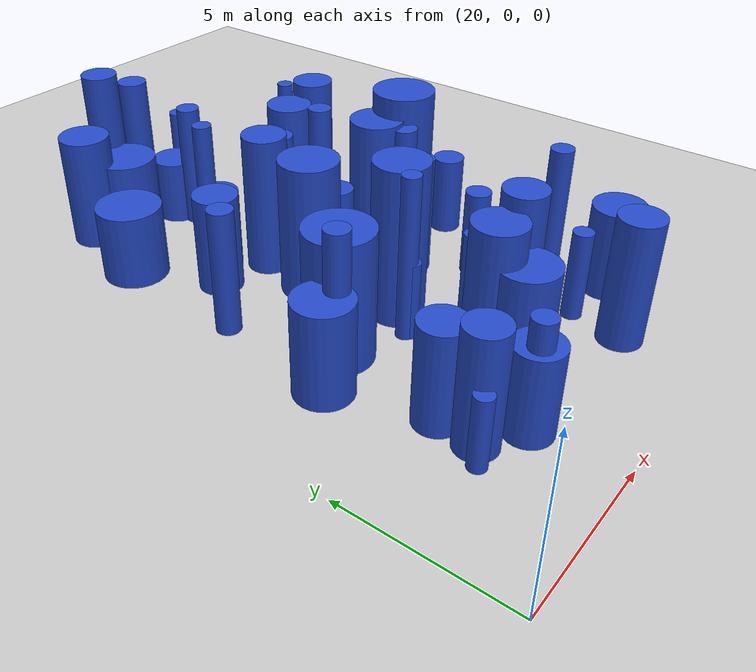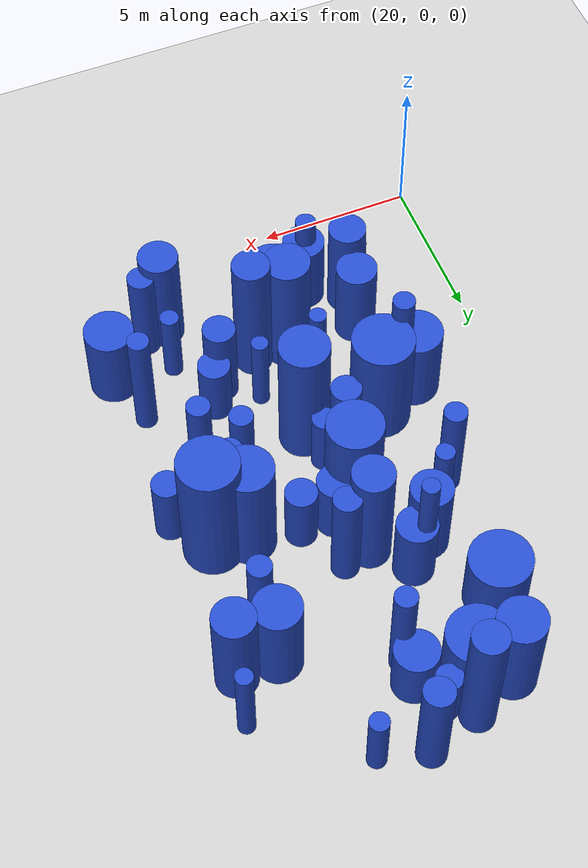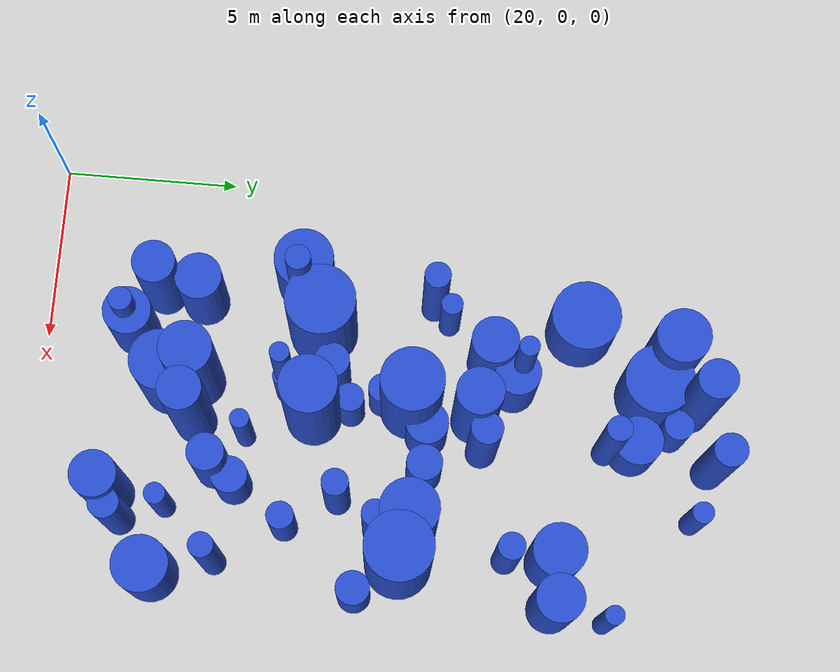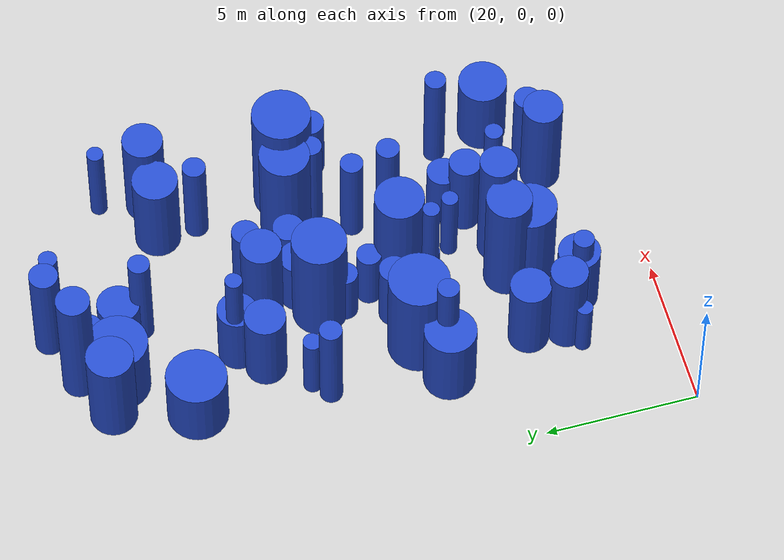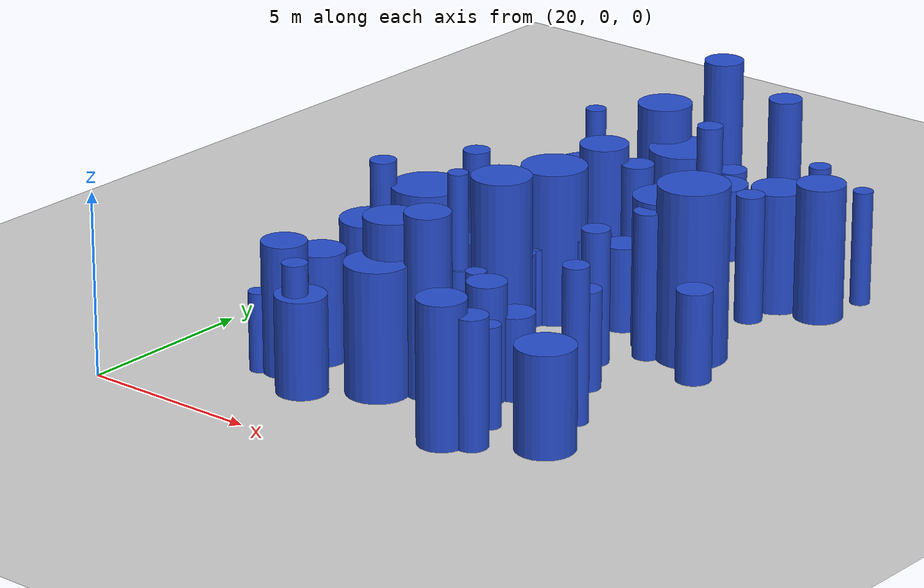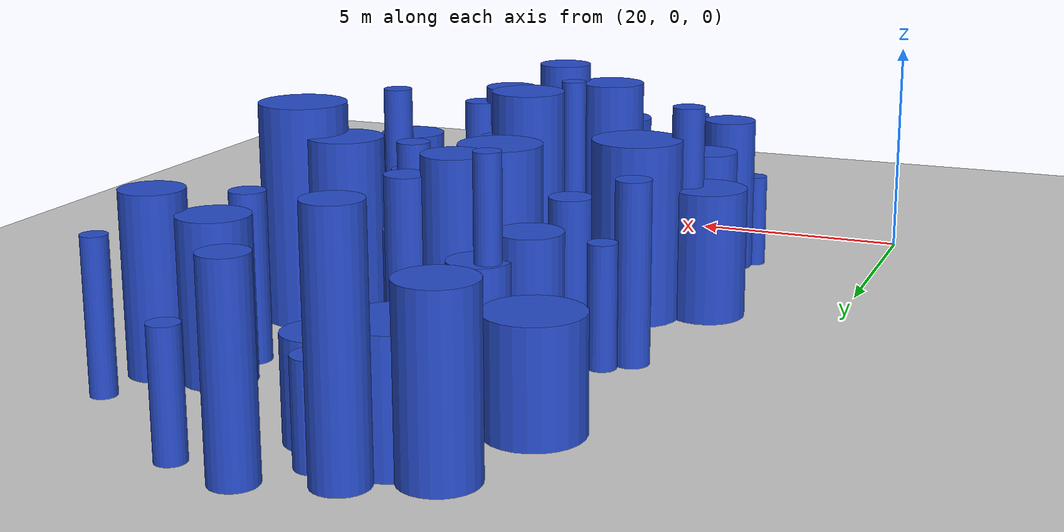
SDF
<sdf version="1.6">
 <world name="default">
  <model name="ground_plane">
   <static>1</static>
   <link name="link">
    <collision name="collision">
     <geometry><plane><normal>0 0 1</normal><size>100 100</size></plane></geometry>
     <surface><friction><ode><mu>100</mu><mu2>50</mu2></ode></friction></surface>
    </collision>
    <visual name="visual">
     <cast_shadows>0</cast_shadows>
     <geometry><plane><normal>0 0 1</normal><size>100 100</size></plane></geometry>
     <material>
      <script><uri>file://media/materials/scripts/gazebo.material</uri><name>Gazebo/Grey</name></script>
     </material>
    </visual>
   </link>
  </model>
  <model name="11">
   <static>0</static>
   <link name="link">
    <inertial>
     <mass>2</mass>
     <inertia><ixx>3.67772</ixx><ixy>0</ixy><ixz>0</ixz><iyy>3.67772</iyy><iyz>0</iyz><izz>0.546704</izz></inertia>
    </inertial>
    <collision name="collision">
     <geometry><cylinder><length>4.51954</length><radius>0.739394</radius></cylinder></geometry>
     <surface><contact><collide_without_contact>1</collide_without_contact></contact></surface>
    </collision>
    <visual name="visual">
     <geometry><cylinder><length>4.51954</length><radius>0.739394</radius></cylinder></geometry>
     <material>
      <script><uri>file://media/materials/scripts/gazebo.material</uri><name>Gazebo/Blue</name></script>
     </material>
    </visual>
    <gravity>0</gravity>
   </link>
   <pose>26.0271 4.56998 2.25977 0 -0 0</pose>
  </model>
  <model name="15">
   <static>0</static>
   <link name="link">
    <inertial>
     <mass>2</mass>
     <inertia><ixx>3.33766</ixx><ixy>0</ixy><ixz>0</ixz><iyy>3.33766</iyy><iyz>0</iyz><izz>0.789182</izz></inertia>
    </inertial>
    <collision name="collision">
     <geometry><cylinder><length>4.20219</length><radius>0.888359</radius></cylinder></geometry>
     <surface><contact><collide_without_contact>1</collide_without_contact></contact></surface>
    </collision>
    <visual name="visual">
     <geometry><cylinder><length>4.20219</length><radius>0.888359</radius></cylinder></geometry>
     <material>
      <script><uri>file://media/materials/scripts/gazebo.material</uri><name>Gazebo/Blue</name></script>
     </material>
    </visual>
    <gravity>0</gravity>
   </link>
   <pose>26.311 10.715 2.1011 0 -0 0</pose>
  </model>
  <model name="26">
   <static>0</static>
   <link name="link">
    <inertial>
     <mass>2</mass>
     <inertia><ixx>1.59022</ixx><ixy>0</ixy><ixz>0</ixz><iyy>1.59022</iyy><iyz>0</iyz><izz>0.948667</izz></inertia>
    </inertial>
    <collision name="collision">
     <geometry><cylinder><length>2.58753</length><radius>0.973996</radius></cylinder></geometry>
     <surface><contact><collide_without_contact>1</collide_without_contact></contact></surface>
    </collision>
    <visual name="visual">
     <geometry><cylinder><length>2.58753</length><radius>0.973996</radius></cylinder></geometry>
     <material>
      <script><uri>file://media/materials/scripts/gazebo.material</uri><name>Gazebo/Blue</name></script>
     </material>
    </visual>
    <gravity>0</gravity>
   </link>
   <pose>25.3744 17.5495 1.29377 0 -0 0</pose>
  </model>
  <model name="30">
   <static>0</static>
   <link name="link">
    <inertial>
     <mass>2</mass>
     <inertia><ixx>1.36472</ixx><ixy>0</ixy><ixz>0</ixz><iyy>1.36472</iyy><iyz>0</iyz><izz>0.964605</izz></inertia>
    </inertial>
    <collision name="collision">
     <geometry><cylinder><length>2.30098</length><radius>0.982143</radius></cylinder></geometry>
     <surface><contact><collide_without_contact>1</collide_without_contact></contact></surface>
    </collision>
    <visual name="visual">
     <geometry><cylinder><length>2.30098</length><radius>0.982143</radius></cylinder></geometry>
     <material>
      <script><uri>file://media/materials/scripts/gazebo.material</uri><name>Gazebo/Blue</name></script>
     </material>
    </visual>
    <gravity>0</gravity>
   </link>
   <pose>23.6658 15.4375 1.15049 0 -0 0</pose>
  </model>
  <model name="35">
   <static>0</static>
   <link name="link">
    <inertial>
     <mass>2</mass>
     <inertia>
      <ixx>1.09122</ixx>
      <ixy>0</ixy>
      <ixz>0</ixz>
      <iyy>1.09122</iyy>
      <iyz>0</iyz>
      <izz>0.0932913</izz>
     </inertia>
    </inertial>
    <collision name="collision">
     <geometry><cylinder><length>2.50348</length><radius>0.305436</radius></cylinder></geometry>
     <surface><contact><collide_without_contact>1</collide_without_contact></contact></surface>
    </collision>
    <visual name="visual">
     <geometry><cylinder><length>2.50348</length><radius>0.305436</radius></cylinder></geometry>
     <material>
      <script><uri>file://media/materials/scripts/gazebo.material</uri><name>Gazebo/Blue</name></script>
     </material>
    </visual>
    <gravity>0</gravity>
   </link>
   <pose>28.9997 18.9307 1.25174 0 -0 0</pose>
  </model>
  <model name="40">
   <static>0</static>
   <link name="link">
    <inertial>
     <mass>2</mass>
     <inertia><ixx>2.77857</ixx><ixy>0</ixy><ixz>0</ixz><iyy>2.77857</iyy><iyz>0</iyz><izz>0.218702</izz></inertia>
    </inertial>
    <collision name="collision">
     <geometry><cylinder><length>4.00191</length><radius>0.467656</radius></cylinder></geometry>
     <surface><contact><collide_without_contact>1</collide_without_contact></contact></surface>
    </collision>
    <visual name="visual">
     <geometry><cylinder><length>4.00191</length><radius>0.467656</radius></cylinder></geometry>
     <material>
      <script><uri>file://media/materials/scripts/gazebo.material</uri><name>Gazebo/Blue</name></script>
     </material>
    </visual>
    <gravity>0</gravity>
   </link>
   <pose>27.4866 19.3515 2.00096 0 -0 0</pose>
  </model>
  <model name="48">
   <static>0</static>
   <link name="link">
    <inertial>
     <mass>2</mass>
     <inertia>
      <ixx>0.818871</ixx>
      <ixy>0</ixy>
      <ixz>0</ixz>
      <iyy>0.818871</iyy>
      <iyz>0</iyz>
      <izz>0.0707383</izz>
     </inertia>
    </inertial>
    <collision name="collision">
     <geometry><cylinder><length>2.16818</length><radius>0.265967</radius></cylinder></geometry>
     <surface><contact><collide_without_contact>1</collide_without_contact></contact></surface>
    </collision>
    <visual name="visual">
     <geometry><cylinder><length>2.16818</length><radius>0.265967</radius></cylinder></geometry>
     <material>
      <script><uri>file://media/materials/scripts/gazebo.material</uri><name>Gazebo/Blue</name></script>
     </material>
    </visual>
    <gravity>0</gravity>
   </link>
   <pose>22.8986 2.94497 1.08409 0 -0 0</pose>
  </model>
  <model name="52">
   <static>0</static>
   <link name="link">
    <inertial>
     <mass>2</mass>
     <inertia><ixx>2.09002</ixx><ixy>0</ixy><ixz>0</ixz><iyy>2.09002</iyy><iyz>0</iyz><izz>0.112428</izz></inertia>
    </inertial>
    <collision name="collision">
     <geometry><cylinder><length>3.49325</length><radius>0.335302</radius></cylinder></geometry>
     <surface><contact><collide_without_contact>1</collide_without_contact></contact></surface>
    </collision>
    <visual name="visual">
     <geometry><cylinder><length>3.49325</length><radius>0.335302</radius></cylinder></geometry>
     <material>
      <script><uri>file://media/materials/scripts/gazebo.material</uri><name>Gazebo/Blue</name></script>
     </material>
    </visual>
    <gravity>0</gravity>
   </link>
   <pose>24.5794 2.51328 1.74663 0 -0 0</pose>
  </model>
  <model name="62">
   <static>0</static>
   <link name="link">
    <inertial>
     <mass>2</mass>
     <inertia><ixx>3.58145</ixx><ixy>0</ixy><ixz>0</ixz><iyy>3.58145</iyy><iyz>0</iyz><izz>0.124934</izz></inertia>
    </inertial>
    <collision name="collision">
     <geometry><cylinder><length>4.59498</length><radius>0.35346</radius></cylinder></geometry>
     <surface><contact><collide_without_contact>1</collide_without_contact></contact></surface>
    </collision>
    <visual name="visual">
     <geometry><cylinder><length>4.59498</length><radius>0.35346</radius></cylinder></geometry>
     <material>
      <script><uri>file://media/materials/scripts/gazebo.material</uri><name>Gazebo/Blue</name></script>
     </material>
    </visual>
    <gravity>0</gravity>
   </link>
   <pose>23.3049 7.35052 2.29749 0 -0 0</pose>
  </model>
  <model name="63">
   <static>0</static>
   <link name="link">
    <inertial>
     <mass>2</mass>
     <inertia><ixx>1.71261</ixx><ixy>0</ixy><ixz>0</ixz><iyy>1.71261</iyy><iyz>0</iyz><izz>0.710603</izz></inertia>
    </inertial>
    <collision name="collision">
     <geometry><cylinder><length>2.85375</length><radius>0.842973</radius></cylinder></geometry>
     <surface><contact><collide_without_contact>1</collide_without_contact></contact></surface>
    </collision>
    <visual name="visual">
     <geometry><cylinder><length>2.85375</length><radius>0.842973</radius></cylinder></geometry>
     <material>
      <script><uri>file://media/materials/scripts/gazebo.material</uri><name>Gazebo/Blue</name></script>
     </material>
    </visual>
    <gravity>0</gravity>
   </link>
   <pose>22.8153 7.3988 1.42687 0 -0 0</pose>
  </model>
  <model name="90">
   <static>0</static>
   <link name="link">
    <inertial>
     <mass>2</mass>
     <inertia><ixx>1.14121</ixx><ixy>0</ixy><ixz>0</ixz><iyy>1.14121</iyy><iyz>0</iyz><izz>0.227526</izz></inertia>
    </inertial>
    <collision name="collision">
     <geometry><cylinder><length>2.48288</length><radius>0.476997</radius></cylinder></geometry>
     <surface><contact><collide_without_contact>1</collide_without_contact></contact></surface>
    </collision>
    <visual name="visual">
     <geometry><cylinder><length>2.48288</length><radius>0.476997</radius></cylinder></geometry>
     <material>
      <script><uri>file://media/materials/scripts/gazebo.material</uri><name>Gazebo/Blue</name></script>
     </material>
    </visual>
    <gravity>0</gravity>
   </link>
   <pose>31.8472 9.54839 1.24144 0 -0 0</pose>
  </model>
  <model name="106">
   <static>0</static>
   <link name="link">
    <inertial>
     <mass>2</mass>
     <inertia>
      <ixx>4.11623</ixx>
      <ixy>0</ixy>
      <ixz>0</ixz>
      <iyy>4.11623</iyy>
      <iyz>0</iyz>
      <izz>0.0741205</izz>
     </inertia>
    </inertial>
    <collision name="collision">
     <geometry><cylinder><length>4.94722</length><radius>0.272251</radius></cylinder></geometry>
     <surface><contact><collide_without_contact>1</collide_without_contact></contact></surface>
    </collision>
    <visual name="visual">
     <geometry><cylinder><length>4.94722</length><radius>0.272251</radius></cylinder></geometry>
     <material>
      <script><uri>file://media/materials/scripts/gazebo.material</uri><name>Gazebo/Blue</name></script>
     </material>
    </visual>
    <gravity>0</gravity>
   </link>
   <pose>26.0422 7.13223 2.47361 0 -0 0</pose>
  </model>
  <model name="129">
   <static>0</static>
   <link name="link">
    <inertial>
     <mass>2</mass>
     <inertia><ixx>2.32373</ixx><ixy>0</ixy><ixz>0</ixz><iyy>2.32373</iyy><iyz>0</iyz><izz>0.141262</izz></inertia>
    </inertial>
    <collision name="collision">
     <geometry><cylinder><length>3.67676</length><radius>0.375848</radius></cylinder></geometry>
     <surface><contact><collide_without_contact>1</collide_without_contact></contact></surface>
    </collision>
    <visual name="visual">
     <geometry><cylinder><length>3.67676</length><radius>0.375848</radius></cylinder></geometry>
     <material>
      <script><uri>file://media/materials/scripts/gazebo.material</uri><name>Gazebo/Blue</name></script>
     </material>
    </visual>
    <gravity>0</gravity>
   </link>
   <pose>29.1877 8.8589 1.83838 0 -0 0</pose>
  </model>
  <model name="131">
   <static>0</static>
   <link name="link">
    <inertial>
     <mass>2</mass>
     <inertia><ixx>1.30772</ixx><ixy>0</ixy><ixz>0</ixz><iyy>1.30772</iyy><iyz>0</iyz><izz>0.4134</izz></inertia>
    </inertial>
    <collision name="collision">
     <geometry><cylinder><length>2.57024</length><radius>0.642962</radius></cylinder></geometry>
     <surface><contact><collide_without_contact>1</collide_without_contact></contact></surface>
    </collision>
    <visual name="visual">
     <geometry><cylinder><length>2.57024</length><radius>0.642962</radius></cylinder></geometry>
     <material>
      <script><uri>file://media/materials/scripts/gazebo.material</uri><name>Gazebo/Blue</name></script>
     </material>
    </visual>
    <gravity>0</gravity>
   </link>
   <pose>25.5249 13.6277 1.28512 0 -0 0</pose>
  </model>
  <model name="133">
   <static>0</static>
   <link name="link">
    <inertial>
     <mass>2</mass>
     <inertia><ixx>2.65468</ixx><ixy>0</ixy><ixz>0</ixz><iyy>2.65468</iyy><iyz>0</iyz><izz>0.197735</izz></inertia>
    </inertial>
    <collision name="collision">
     <geometry><cylinder><length>3.91597</length><radius>0.444674</radius></cylinder></geometry>
     <surface><contact><collide_without_contact>1</collide_without_contact></contact></surface>
    </collision>
    <visual name="visual">
     <geometry><cylinder><length>3.91597</length><radius>0.444674</radius></cylinder></geometry>
     <material>
      <script><uri>file://media/materials/scripts/gazebo.material</uri><name>Gazebo/Blue</name></script>
     </material>
    </visual>
    <gravity>0</gravity>
   </link>
   <pose>27.4263 12.8234 1.95799 0 -0 0</pose>
  </model>
  <model name="141">
   <static>0</static>
   <link name="link">
    <inertial>
     <mass>2</mass>
     <inertia>
      <ixx>0.773371</ixx>
      <ixy>0</ixy>
      <ixz>0</ixz>
      <iyy>0.773371</iyy>
      <iyz>0</iyz>
      <izz>0.17741</izz>
     </inertia>
    </inertial>
    <collision name="collision">
     <geometry><cylinder><length>2.02682</length><radius>0.421201</radius></cylinder></geometry>
     <surface><contact><collide_without_contact>1</collide_without_contact></contact></surface>
    </collision>
    <visual name="visual">
     <geometry><cylinder><length>2.02682</length><radius>0.421201</radius></cylinder></geometry>
     <material>
      <script><uri>file://media/materials/scripts/gazebo.material</uri><name>Gazebo/Blue</name></script>
     </material>
    </visual>
    <gravity>0</gravity>
   </link>
   <pose>26.534 18.2207 1.01341 0 -0 0</pose>
  </model>
  <model name="161">
   <static>0</static>
   <link name="link">
    <inertial>
     <mass>2</mass>
     <inertia><ixx>1.04062</ixx><ixy>0</ixy><ixz>0</ixz><iyy>1.04062</iyy><iyz>0</iyz><izz>0.257795</izz></inertia>
    </inertial>
    <collision name="collision">
     <geometry><cylinder><length>2.33887</length><radius>0.507735</radius></cylinder></geometry>
     <surface><contact><collide_without_contact>1</collide_without_contact></contact></surface>
    </collision>
    <visual name="visual">
     <geometry><cylinder><length>2.33887</length><radius>0.507735</radius></cylinder></geometry>
     <material>
      <script><uri>file://media/materials/scripts/gazebo.material</uri><name>Gazebo/Blue</name></script>
     </material>
    </visual>
    <gravity>0</gravity>
   </link>
   <pose>28.2179 11.2291 1.16943 0 -0 0</pose>
  </model>
  <model name="167">
   <static>0</static>
   <link name="link">
    <inertial>
     <mass>2</mass>
     <inertia><ixx>2.69004</ixx><ixy>0</ixy><ixz>0</ixz><iyy>2.69004</iyy><iyz>0</iyz><izz>0.419163</izz></inertia>
    </inertial>
    <collision name="collision">
     <geometry><cylinder><length>3.85781</length><radius>0.647428</radius></cylinder></geometry>
     <surface><contact><collide_without_contact>1</collide_without_contact></contact></surface>
    </collision>
    <visual name="visual">
     <geometry><cylinder><length>3.85781</length><radius>0.647428</radius></cylinder></geometry>
     <material>
      <script><uri>file://media/materials/scripts/gazebo.material</uri><name>Gazebo/Blue</name></script>
     </material>
    </visual>
    <gravity>0</gravity>
   </link>
   <pose>29.5257 2.39468 1.92891 0 -0 0</pose>
  </model>
  <model name="179">
   <static>0</static>
   <link name="link">
    <inertial>
     <mass>2</mass>
     <inertia>
      <ixx>3.76703</ixx>
      <ixy>0</ixy>
      <ixz>0</ixz>
      <iyy>3.76703</iyy>
      <iyz>0</iyz>
      <izz>0.0770353</izz>
     </inertia>
    </inertial>
    <collision name="collision">
     <geometry><cylinder><length>4.72981</length><radius>0.277552</radius></cylinder></geometry>
     <surface><contact><collide_without_contact>1</collide_without_contact></contact></surface>
    </collision>
    <visual name="visual">
     <geometry><cylinder><length>4.72981</length><radius>0.277552</radius></cylinder></geometry>
     <material>
      <script><uri>file://media/materials/scripts/gazebo.material</uri><name>Gazebo/Blue</name></script>
     </material>
    </visual>
    <gravity>0</gravity>
   </link>
   <pose>25.2744 13.7542 2.3649 0 -0 0</pose>
  </model>
  <model name="212">
   <static>0</static>
   <link name="link">
    <inertial>
     <mass>2</mass>
     <inertia>
      <ixx>1.71859</ixx>
      <ixy>0</ixy>
      <ixz>0</ixz>
      <iyy>1.71859</iyy>
      <iyz>0</iyz>
      <izz>0.0738454</izz>
     </inertia>
    </inertial>
    <collision name="collision">
     <geometry><cylinder><length>3.17647</length><radius>0.271745</radius></cylinder></geometry>
     <surface><contact><collide_without_contact>1</collide_without_contact></contact></surface>
    </collision>
    <visual name="visual">
     <geometry><cylinder><length>3.17647</length><radius>0.271745</radius></cylinder></geometry>
     <material>
      <script><uri>file://media/materials/scripts/gazebo.material</uri><name>Gazebo/Blue</name></script>
     </material>
    </visual>
    <gravity>0</gravity>
   </link>
   <pose>32.0536 16.6024 1.58824 0 -0 0</pose>
  </model>
  <model name="213">
   <static>0</static>
   <link name="link">
    <inertial>
     <mass>2</mass>
     <inertia><ixx>2.75082</ixx><ixy>0</ixy><ixz>0</ixz><iyy>2.75082</iyy><iyz>0</iyz><izz>0.142225</izz></inertia>
    </inertial>
    <collision name="collision">
     <geometry><cylinder><length>4.00977</length><radius>0.377127</radius></cylinder></geometry>
     <surface><contact><collide_without_contact>1</collide_without_contact></contact></surface>
    </collision>
    <visual name="visual">
     <geometry><cylinder><length>4.00977</length><radius>0.377127</radius></cylinder></geometry>
     <material>
      <script><uri>file://media/materials/scripts/gazebo.material</uri><name>Gazebo/Blue</name></script>
     </material>
    </visual>
    <gravity>0</gravity>
   </link>
   <pose>29.9703 10.0145 2.00488 0 -0 0</pose>
  </model>
  <model name="219">
   <static>0</static>
   <link name="link">
    <inertial>
     <mass>2</mass>
     <inertia><ixx>1.58303</ixx><ixy>0</ixy><ixz>0</ixz><iyy>1.58303</iyy><iyz>0</iyz><izz>0.626246</izz></inertia>
    </inertial>
    <collision name="collision">
     <geometry><cylinder><length>2.76034</length><radius>0.791357</radius></cylinder></geometry>
     <surface><contact><collide_without_contact>1</collide_without_contact></contact></surface>
    </collision>
    <visual name="visual">
     <geometry><cylinder><length>2.76034</length><radius>0.791357</radius></cylinder></geometry>
     <material>
      <script><uri>file://media/materials/scripts/gazebo.material</uri><name>Gazebo/Blue</name></script>
     </material>
    </visual>
    <gravity>0</gravity>
   </link>
   <pose>31.6978 3.75579 1.38017 0 -0 0</pose>
  </model>
  <model name="221">
   <static>0</static>
   <link name="link">
    <inertial>
     <mass>2</mass>
     <inertia><ixx>2.31346</ixx><ixy>0</ixy><ixz>0</ixz><iyy>2.31346</iyy><iyz>0</iyz><izz>0.365877</izz></inertia>
    </inertial>
    <collision name="collision">
     <geometry><cylinder><length>3.57535</length><radius>0.604878</radius></cylinder></geometry>
     <surface><contact><collide_without_contact>1</collide_without_contact></contact></surface>
    </collision>
    <visual name="visual">
     <geometry><cylinder><length>3.57535</length><radius>0.604878</radius></cylinder></geometry>
     <material>
      <script><uri>file://media/materials/scripts/gazebo.material</uri><name>Gazebo/Blue</name></script>
     </material>
    </visual>
    <gravity>0</gravity>
   </link>
   <pose>23.4732 3.32358 1.78767 0 -0 0</pose>
  </model>
  <model name="225">
   <static>0</static>
   <link name="link">
    <inertial>
     <mass>2</mass>
     <inertia><ixx>1.28209</ixx><ixy>0</ixy><ixz>0</ixz><iyy>1.28209</iyy><iyz>0</iyz><izz>0.149104</izz></inertia>
    </inertial>
    <collision name="collision">
     <geometry><cylinder><length>2.6917</length><radius>0.38614</radius></cylinder></geometry>
     <surface><contact><collide_without_contact>1</collide_without_contact></contact></surface>
    </collision>
    <visual name="visual">
     <geometry><cylinder><length>2.6917</length><radius>0.38614</radius></cylinder></geometry>
     <material>
      <script><uri>file://media/materials/scripts/gazebo.material</uri><name>Gazebo/Blue</name></script>
     </material>
    </visual>
    <gravity>0</gravity>
   </link>
   <pose>30.0636 7.40903 1.34585 0 -0 0</pose>
  </model>
  <model name="227">
   <static>0</static>
   <link name="link">
    <inertial>
     <mass>2</mass>
     <inertia><ixx>3.36596</ixx><ixy>0</ixy><ixz>0</ixz><iyy>3.36596</iyy><iyz>0</iyz><izz>0.434671</izz></inertia>
    </inertial>
    <collision name="collision">
     <geometry><cylinder><length>4.34647</length><radius>0.659296</radius></cylinder></geometry>
     <surface><contact><collide_without_contact>1</collide_without_contact></contact></surface>
    </collision>
    <visual name="visual">
     <geometry><cylinder><length>4.34647</length><radius>0.659296</radius></cylinder></geometry>
     <material>
      <script><uri>file://media/materials/scripts/gazebo.material</uri><name>Gazebo/Blue</name></script>
     </material>
    </visual>
    <gravity>0</gravity>
   </link>
   <pose>26.5161 12.5519 2.17323 0 -0 0</pose>
  </model>
  <model name="237">
   <static>0</static>
   <link name="link">
    <inertial>
     <mass>2</mass>
     <inertia>
      <ixx>0.795104</ixx>
      <ixy>0</ixy>
      <ixz>0</ixz>
      <iyy>0.795104</iyy>
      <iyz>0</iyz>
      <izz>0.118819</izz>
     </inertia>
    </inertial>
    <collision name="collision">
     <geometry><cylinder><length>2.10099</length><radius>0.344702</radius></cylinder></geometry>
     <surface><contact><collide_without_contact>1</collide_without_contact></contact></surface>
    </collision>
    <visual name="visual">
     <geometry><cylinder><length>2.10099</length><radius>0.344702</radius></cylinder></geometry>
     <material>
      <script><uri>file://media/materials/scripts/gazebo.material</uri><name>Gazebo/Blue</name></script>
     </material>
    </visual>
    <gravity>0</gravity>
   </link>
   <pose>27.0916 7.81483 1.0505 0 -0 0</pose>
  </model>
  <model name="243">
   <static>0</static>
   <link name="link">
    <inertial>
     <mass>2</mass>
     <inertia><ixx>4.24812</ixx><ixy>0</ixy><ixz>0</ixz><iyy>4.24812</iyy><iyz>0</iyz><izz>0.909035</izz></inertia>
    </inertial>
    <collision name="collision">
     <geometry><cylinder><length>4.77091</length><radius>0.953433</radius></cylinder></geometry>
     <surface><contact><collide_without_contact>1</collide_without_contact></contact></surface>
    </collision>
    <visual name="visual">
     <geometry><cylinder><length>4.77091</length><radius>0.953433</radius></cylinder></geometry>
     <material>
      <script><uri>file://media/materials/scripts/gazebo.material</uri><name>Gazebo/Blue</name></script>
     </material>
    </visual>
    <gravity>0</gravity>
   </link>
   <pose>30.8804 10.7206 2.38546 0 -0 0</pose>
  </model>
  <model name="247">
   <static>0</static>
   <link name="link">
    <inertial>
     <mass>2</mass>
     <inertia>
      <ixx>0.961599</ixx>
      <ixy>0</ixy>
      <ixz>0</ixz>
      <iyy>0.961599</iyy>
      <iyz>0</iyz>
      <izz>0.0758823</izz>
     </inertia>
    </inertial>
    <collision name="collision">
     <geometry><cylinder><length>2.35413</length><radius>0.275467</radius></cylinder></geometry>
     <surface><contact><collide_without_contact>1</collide_without_contact></contact></surface>
    </collision>
    <visual name="visual">
     <geometry><cylinder><length>2.35413</length><radius>0.275467</radius></cylinder></geometry>
     <material>
      <script><uri>file://media/materials/scripts/gazebo.material</uri><name>Gazebo/Blue</name></script>
     </material>
    </visual>
    <gravity>0</gravity>
   </link>
   <pose>26.1173 7.07936 1.17707 0 -0 0</pose>
  </model>
  <model name="252">
   <static>0</static>
   <link name="link">
    <inertial>
     <mass>2</mass>
     <inertia><ixx>4.15909</ixx><ixy>0</ixy><ixz>0</ixz><iyy>4.15909</iyy><iyz>0</iyz><izz>0.299996</izz></inertia>
    </inertial>
    <collision name="collision">
     <geometry><cylinder><length>4.90454</length><radius>0.547719</radius></cylinder></geometry>
     <surface><contact><collide_without_contact>1</collide_without_contact></contact></surface>
    </collision>
    <visual name="visual">
     <geometry><cylinder><length>4.90454</length><radius>0.547719</radius></cylinder></geometry>
     <material>
      <script><uri>file://media/materials/scripts/gazebo.material</uri><name>Gazebo/Blue</name></script>
     </material>
    </visual>
    <gravity>0</gravity>
   </link>
   <pose>25.7835 18.7773 2.45227 0 -0 0</pose>
  </model>
  <model name="254">
   <static>0</static>
   <link name="link">
    <inertial>
     <mass>2</mass>
     <inertia><ixx>2.11916</ixx><ixy>0</ixy><ixz>0</ixz><iyy>2.11916</iyy><iyz>0</iyz><izz>0.185647</izz></inertia>
    </inertial>
    <collision name="collision">
     <geometry><cylinder><length>3.48683</length><radius>0.430868</radius></cylinder></geometry>
     <surface><contact><collide_without_contact>1</collide_without_contact></contact></surface>
    </collision>
    <visual name="visual">
     <geometry><cylinder><length>3.48683</length><radius>0.430868</radius></cylinder></geometry>
     <material>
      <script><uri>file://media/materials/scripts/gazebo.material</uri><name>Gazebo/Blue</name></script>
     </material>
    </visual>
    <gravity>0</gravity>
   </link>
   <pose>30.2282 2.70434 1.74342 0 -0 0</pose>
  </model>
  <model name="268">
   <static>0</static>
   <link name="link">
    <inertial>
     <mass>2</mass>
     <inertia>
      <ixx>1.28497</ixx>
      <ixy>0</ixy>
      <ixz>0</ixz>
      <iyy>1.28497</iyy>
      <iyz>0</iyz>
      <izz>0.0908611</izz>
     </inertia>
    </inertial>
    <collision name="collision">
     <geometry><cylinder><length>2.72713</length><radius>0.301432</radius></cylinder></geometry>
     <surface><contact><collide_without_contact>1</collide_without_contact></contact></surface>
    </collision>
    <visual name="visual">
     <geometry><cylinder><length>2.72713</length><radius>0.301432</radius></cylinder></geometry>
     <material>
      <script><uri>file://media/materials/scripts/gazebo.material</uri><name>Gazebo/Blue</name></script>
     </material>
    </visual>
    <gravity>0</gravity>
   </link>
   <pose>29.7561 3.94768 1.36356 0 -0 0</pose>
  </model>
  <model name="275">
   <static>0</static>
   <link name="link">
    <inertial>
     <mass>2</mass>
     <inertia>
      <ixx>1.47608</ixx>
      <ixy>0</ixy>
      <ixz>0</ixz>
      <iyy>1.47608</iyy>
      <iyz>0</iyz>
      <izz>0.0747339</izz>
     </inertia>
    </inertial>
    <collision name="collision">
     <geometry><cylinder><length>2.93808</length><radius>0.273375</radius></cylinder></geometry>
     <surface><contact><collide_without_contact>1</collide_without_contact></contact></surface>
    </collision>
    <visual name="visual">
     <geometry><cylinder><length>2.93808</length><radius>0.273375</radius></cylinder></geometry>
     <material>
      <script><uri>file://media/materials/scripts/gazebo.material</uri><name>Gazebo/Blue</name></script>
     </material>
    </visual>
    <gravity>0</gravity>
   </link>
   <pose>27.5332 6.06495 1.46904 0 -0 0</pose>
  </model>
  <model name="291">
   <static>0</static>
   <link name="link">
    <inertial>
     <mass>2</mass>
     <inertia><ixx>2.48132</ixx><ixy>0</ixy><ixz>0</ixz><iyy>2.48132</iyy><iyz>0</iyz><izz>0.135993</izz></inertia>
    </inertial>
    <collision name="collision">
     <geometry><cylinder><length>3.80525</length><radius>0.368772</radius></cylinder></geometry>
     <surface><contact><collide_without_contact>1</collide_without_contact></contact></surface>
    </collision>
    <visual name="visual">
     <geometry><cylinder><length>3.80525</length><radius>0.368772</radius></cylinder></geometry>
     <material>
      <script><uri>file://media/materials/scripts/gazebo.material</uri><name>Gazebo/Blue</name></script>
     </material>
    </visual>
    <gravity>0</gravity>
   </link>
   <pose>23.2663 11.1714 1.90263 0 -0 0</pose>
  </model>
  <model name="294">
   <static>0</static>
   <link name="link">
    <inertial>
     <mass>2</mass>
     <inertia><ixx>1.75286</ixx><ixy>0</ixy><ixz>0</ixz><iyy>1.75286</iyy><iyz>0</iyz><izz>0.444906</izz></inertia>
    </inertial>
    <collision name="collision">
     <geometry><cylinder><length>3.03026</length><radius>0.667012</radius></cylinder></geometry>
     <surface><contact><collide_without_contact>1</collide_without_contact></contact></surface>
    </collision>
    <visual name="visual">
     <geometry><cylinder><length>3.03026</length><radius>0.667012</radius></cylinder></geometry>
     <material>
      <script><uri>file://media/materials/scripts/gazebo.material</uri><name>Gazebo/Blue</name></script>
     </material>
    </visual>
    <gravity>0</gravity>
   </link>
   <pose>24.7612 12.908 1.51513 0 -0 0</pose>
  </model>
  <model name="298">
   <static>0</static>
   <link name="link">
    <inertial>
     <mass>2</mass>
     <inertia><ixx>4.18128</ixx><ixy>0</ixy><ixz>0</ixz><iyy>4.18128</iyy><iyz>0</iyz><izz>0.642537</izz></inertia>
    </inertial>
    <collision name="collision">
     <geometry><cylinder><length>4.81249</length><radius>0.801584</radius></cylinder></geometry>
     <surface><contact><collide_without_contact>1</collide_without_contact></contact></surface>
    </collision>
    <visual name="visual">
     <geometry><cylinder><length>4.81249</length><radius>0.801584</radius></cylinder></geometry>
     <material>
      <script><uri>file://media/materials/scripts/gazebo.material</uri><name>Gazebo/Blue</name></script>
     </material>
    </visual>
    <gravity>0</gravity>
   </link>
   <pose>26.8054 7.95598 2.40624 0 -0 0</pose>
  </model>
  <model name="310">
   <static>0</static>
   <link name="link">
    <inertial>
     <mass>2</mass>
     <inertia><ixx>2.99651</ixx><ixy>0</ixy><ixz>0</ixz><iyy>2.99651</iyy><iyz>0</iyz><izz>0.119883</izz></inertia>
    </inertial>
    <collision name="collision">
     <geometry><cylinder><length>4.19755</length><radius>0.346241</radius></cylinder></geometry>
     <surface><contact><collide_without_contact>1</collide_without_contact></contact></surface>
    </collision>
    <visual name="visual">
     <geometry><cylinder><length>4.19755</length><radius>0.346241</radius></cylinder></geometry>
     <material>
      <script><uri>file://media/materials/scripts/gazebo.material</uri><name>Gazebo/Blue</name></script>
     </material>
    </visual>
    <gravity>0</gravity>
   </link>
   <pose>31.2247 5.50876 2.09878 0 -0 0</pose>
  </model>
  <model name="316">
   <static>0</static>
   <link name="link">
    <inertial>
     <mass>2</mass>
     <inertia><ixx>2.14174</ixx><ixy>0</ixy><ixz>0</ixz><iyy>2.14174</iyy><iyz>0</iyz><izz>0.144232</izz></inertia>
    </inertial>
    <collision name="collision">
     <geometry><cylinder><length>3.52389</length><radius>0.379779</radius></cylinder></geometry>
     <surface><contact><collide_without_contact>1</collide_without_contact></contact></surface>
    </collision>
    <visual name="visual">
     <geometry><cylinder><length>3.52389</length><radius>0.379779</radius></cylinder></geometry>
     <material>
      <script><uri>file://media/materials/scripts/gazebo.material</uri><name>Gazebo/Blue</name></script>
     </material>
    </visual>
    <gravity>0</gravity>
   </link>
   <pose>30.4843 13.725 1.76194 0 -0 0</pose>
  </model>
  <model name="328">
   <static>0</static>
   <link name="link">
    <inertial>
     <mass>2</mass>
     <inertia><ixx>2.66189</ixx><ixy>0</ixy><ixz>0</ixz><iyy>2.66189</iyy><iyz>0</iyz><izz>0.125615</izz></inertia>
    </inertial>
    <collision name="collision">
     <geometry><cylinder><length>3.94899</length><radius>0.354422</radius></cylinder></geometry>
     <surface><contact><collide_without_contact>1</collide_without_contact></contact></surface>
    </collision>
    <visual name="visual">
     <geometry><cylinder><length>3.94899</length><radius>0.354422</radius></cylinder></geometry>
     <material>
      <script><uri>file://media/materials/scripts/gazebo.material</uri><name>Gazebo/Blue</name></script>
     </material>
    </visual>
    <gravity>0</gravity>
   </link>
   <pose>27.1461 16.3628 1.97449 0 -0 0</pose>
  </model>
  <model name="331">
   <static>0</static>
   <link name="link">
    <inertial>
     <mass>2</mass>
     <inertia><ixx>4.18482</ixx><ixy>0</ixy><ixz>0</ixz><iyy>4.18482</iyy><iyz>0</iyz><izz>0.366313</izz></inertia>
    </inertial>
    <collision name="collision">
     <geometry><cylinder><length>4.9</length><radius>0.605238</radius></cylinder></geometry>
     <surface><contact><collide_without_contact>1</collide_without_contact></contact></surface>
    </collision>
    <visual name="visual">
     <geometry><cylinder><length>4.9</length><radius>0.605238</radius></cylinder></geometry>
     <material>
      <script><uri>file://media/materials/scripts/gazebo.material</uri><name>Gazebo/Blue</name></script>
     </material>
    </visual>
    <gravity>0</gravity>
   </link>
   <pose>27.2165 4.5778 2.45 0 -0 0</pose>
  </model>
  <model name="347">
   <static>0</static>
   <link name="link">
    <inertial>
     <mass>2</mass>
     <inertia>
      <ixx>0.972293</ixx>
      <ixy>0</ixy>
      <ixz>0</ixz>
      <iyy>0.972293</iyy>
      <iyz>0</iyz>
      <izz>0.163174</izz>
     </inertia>
    </inertial>
    <collision name="collision">
     <geometry><cylinder><length>2.31176</length><radius>0.403948</radius></cylinder></geometry>
     <surface><contact><collide_without_contact>1</collide_without_contact></contact></surface>
    </collision>
    <visual name="visual">
     <geometry><cylinder><length>2.31176</length><radius>0.403948</radius></cylinder></geometry>
     <material>
      <script><uri>file://media/materials/scripts/gazebo.material</uri><name>Gazebo/Blue</name></script>
     </material>
    </visual>
    <gravity>0</gravity>
   </link>
   <pose>26.5631 9.01259 1.15588 0 -0 0</pose>
  </model>
  <model name="348">
   <static>0</static>
   <link name="link">
    <inertial>
     <mass>2</mass>
     <inertia><ixx>3.19341</ixx><ixy>0</ixy><ixz>0</ixz><iyy>3.19341</iyy><iyz>0</iyz><izz>0.675979</izz></inertia>
    </inertial>
    <collision name="collision">
     <geometry><cylinder><length>4.13915</length><radius>0.822179</radius></cylinder></geometry>
     <surface><contact><collide_without_contact>1</collide_without_contact></contact></surface>
    </collision>
    <visual name="visual">
     <geometry><cylinder><length>4.13915</length><radius>0.822179</radius></cylinder></geometry>
     <material>
      <script><uri>file://media/materials/scripts/gazebo.material</uri><name>Gazebo/Blue</name></script>
     </material>
    </visual>
    <gravity>0</gravity>
   </link>
   <pose>29.7749 10.92 2.06957 0 -0 0</pose>
  </model>
  <model name="353">
   <static>0</static>
   <link name="link">
    <inertial>
     <mass>2</mass>
     <inertia><ixx>3.07415</ixx><ixy>0</ixy><ixz>0</ixz><iyy>3.07415</iyy><iyz>0</iyz><izz>0.975444</izz></inertia>
    </inertial>
    <collision name="collision">
     <geometry><cylinder><length>3.93936</length><radius>0.987646</radius></cylinder></geometry>
     <surface><contact><collide_without_contact>1</collide_without_contact></contact></surface>
    </collision>
    <visual name="visual">
     <geometry><cylinder><length>3.93936</length><radius>0.987646</radius></cylinder></geometry>
     <material>
      <script><uri>file://media/materials/scripts/gazebo.material</uri><name>Gazebo/Blue</name></script>
     </material>
    </visual>
    <gravity>0</gravity>
   </link>
   <pose>24.2463 8.02418 1.96968 0 -0 0</pose>
  </model>
  <model name="365">
   <static>0</static>
   <link name="link">
    <inertial>
     <mass>2</mass>
     <inertia><ixx>2.56423</ixx><ixy>0</ixy><ixz>0</ixz><iyy>2.56423</iyy><iyz>0</iyz><izz>0.441031</izz></inertia>
    </inertial>
    <collision name="collision">
     <geometry><cylinder><length>3.74997</length><radius>0.664102</radius></cylinder></geometry>
     <surface><contact><collide_without_contact>1</collide_without_contact></contact></surface>
    </collision>
    <visual name="visual">
     <geometry><cylinder><length>3.74997</length><radius>0.664102</radius></cylinder></geometry>
     <material>
      <script><uri>file://media/materials/scripts/gazebo.material</uri><name>Gazebo/Blue</name></script>
     </material>
    </visual>
    <gravity>0</gravity>
   </link>
   <pose>31.7716 15.0887 1.87498 0 -0 0</pose>
  </model>
  <model name="369">
   <static>0</static>
   <link name="link">
    <inertial>
     <mass>2</mass>
     <inertia>
      <ixx>0.990083</ixx>
      <ixy>0</ixy>
      <ixz>0</ixz>
      <iyy>0.990083</iyy>
      <iyz>0</iyz>
      <izz>0.27052</izz>
     </inertia>
    </inertial>
    <collision name="collision">
     <geometry><cylinder><length>2.26472</length><radius>0.520116</radius></cylinder></geometry>
     <surface><contact><collide_without_contact>1</collide_without_contact></contact></surface>
    </collision>
    <visual name="visual">
     <geometry><cylinder><length>2.26472</length><radius>0.520116</radius></cylinder></geometry>
     <material>
      <script><uri>file://media/materials/scripts/gazebo.material</uri><name>Gazebo/Blue</name></script>
     </material>
    </visual>
    <gravity>0</gravity>
   </link>
   <pose>28.9977 5.86889 1.13236 0 -0 0</pose>
  </model>
  <model name="375">
   <static>0</static>
   <link name="link">
    <inertial>
     <mass>2</mass>
     <inertia>
      <ixx>1.16819</ixx>
      <ixy>0</ixy>
      <ixz>0</ixz>
      <iyy>1.16819</iyy>
      <iyz>0</iyz>
      <izz>0.0938175</izz>
     </inertia>
    </inertial>
    <collision name="collision">
     <geometry><cylinder><length>2.59378</length><radius>0.306296</radius></cylinder></geometry>
     <surface><contact><collide_without_contact>1</collide_without_contact></contact></surface>
    </collision>
    <visual name="visual">
     <geometry><cylinder><length>2.59378</length><radius>0.306296</radius></cylinder></geometry>
     <material>
      <script><uri>file://media/materials/scripts/gazebo.material</uri><name>Gazebo/Blue</name></script>
     </material>
    </visual>
    <gravity>0</gravity>
   </link>
   <pose>23.7353 11.6468 1.29689 0 -0 0</pose>
  </model>
  <model name="391">
   <static>0</static>
   <link name="link">
    <inertial>
     <mass>2</mass>
     <inertia>
      <ixx>0.932234</ixx>
      <ixy>0</ixy>
      <ixz>0</ixz>
      <iyy>0.932234</iyy>
      <iyz>0</iyz>
      <izz>0.47763</izz>
     </inertia>
    </inertial>
    <collision name="collision">
     <geometry><cylinder><length>2.03973</length><radius>0.691108</radius></cylinder></geometry>
     <surface><contact><collide_without_contact>1</collide_without_contact></contact></surface>
    </collision>
    <visual name="visual">
     <geometry><cylinder><length>2.03973</length><radius>0.691108</radius></cylinder></geometry>
     <material>
      <script><uri>file://media/materials/scripts/gazebo.material</uri><name>Gazebo/Blue</name></script>
     </material>
    </visual>
    <gravity>0</gravity>
   </link>
   <pose>27.056 17.1266 1.01987 0 -0 0</pose>
  </model>
  <model name="398">
   <static>0</static>
   <link name="link">
    <inertial>
     <mass>2</mass>
     <inertia><ixx>2.44963</ixx><ixy>0</ixy><ixz>0</ixz><iyy>2.44963</iyy><iyz>0</iyz><izz>0.725626</izz></inertia>
    </inertial>
    <collision name="collision">
     <geometry><cylinder><length>3.53848</length><radius>0.851837</radius></cylinder></geometry>
     <surface><contact><collide_without_contact>1</collide_without_contact></contact></surface>
    </collision>
    <visual name="visual">
     <geometry><cylinder><length>3.53848</length><radius>0.851837</radius></cylinder></geometry>
     <material>
      <script><uri>file://media/materials/scripts/gazebo.material</uri><name>Gazebo/Blue</name></script>
     </material>
    </visual>
    <gravity>0</gravity>
   </link>
   <pose>26.1994 3.78914 1.76924 0 -0 0</pose>
  </model>
  <model name="399">
   <static>0</static>
   <link name="link">
    <inertial>
     <mass>2</mass>
     <inertia><ixx>1.81493</ixx><ixy>0</ixy><ixz>0</ixz><iyy>1.81493</iyy><iyz>0</iyz><izz>0.276465</izz></inertia>
    </inertial>
    <collision name="collision">
     <geometry><cylinder><length>3.17178</length><radius>0.525799</radius></cylinder></geometry>
     <surface><contact><collide_without_contact>1</collide_without_contact></contact></surface>
    </collision>
    <visual name="visual">
     <geometry><cylinder><length>3.17178</length><radius>0.525799</radius></cylinder></geometry>
     <material>
      <script><uri>file://media/materials/scripts/gazebo.material</uri><name>Gazebo/Blue</name></script>
     </material>
    </visual>
    <gravity>0</gravity>
   </link>
   <pose>28.5718 5.25535 1.58589 0 -0 0</pose>
  </model>
  <model name="420">
   <static>0</static>
   <link name="link">
    <inertial>
     <mass>2</mass>
     <inertia>
      <ixx>0.845794</ixx>
      <ixy>0</ixy>
      <ixz>0</ixz>
      <iyy>0.845794</iyy>
      <iyz>0</iyz>
      <izz>0.167707</izz>
     </inertia>
    </inertial>
    <collision name="collision">
     <geometry><cylinder><length>2.13814</length><radius>0.409521</radius></cylinder></geometry>
     <surface><contact><collide_without_contact>1</collide_without_contact></contact></surface>
    </collision>
    <visual name="visual">
     <geometry><cylinder><length>2.13814</length><radius>0.409521</radius></cylinder></geometry>
     <material>
      <script><uri>file://media/materials/scripts/gazebo.material</uri><name>Gazebo/Blue</name></script>
     </material>
    </visual>
    <gravity>0</gravity>
   </link>
   <pose>26.1834 9.90676 1.06907 0 -0 0</pose>
  </model>
  <model name="424">
   <static>0</static>
   <link name="link">
    <inertial>
     <mass>2</mass>
     <inertia><ixx>1.40338</ixx><ixy>0</ixy><ixz>0</ixz><iyy>1.40338</iyy><iyz>0</iyz><izz>0.469278</izz></inertia>
    </inertial>
    <collision name="collision">
     <geometry><cylinder><length>2.64811</length><radius>0.685039</radius></cylinder></geometry>
     <surface><contact><collide_without_contact>1</collide_without_contact></contact></surface>
    </collision>
    <visual name="visual">
     <geometry><cylinder><length>2.64811</length><radius>0.685039</radius></cylinder></geometry>
     <material>
      <script><uri>file://media/materials/scripts/gazebo.material</uri><name>Gazebo/Blue</name></script>
     </material>
    </visual>
    <gravity>0</gravity>
   </link>
   <pose>24.6839 2.59762 1.32405 0 -0 0</pose>
  </model>
  <model name="453">
   <static>0</static>
   <link name="link">
    <inertial>
     <mass>2</mass>
     <inertia><ixx>1.28331</ixx><ixy>0</ixy><ixz>0</ixz><iyy>1.28331</iyy><iyz>0</iyz><izz>0.241476</izz></inertia>
    </inertial>
    <collision name="collision">
     <geometry><cylinder><length>2.6411</length><radius>0.491402</radius></cylinder></geometry>
     <surface><contact><collide_without_contact>1</collide_without_contact></contact></surface>
    </collision>
    <visual name="visual">
     <geometry><cylinder><length>2.6411</length><radius>0.491402</radius></cylinder></geometry>
     <material>
      <script><uri>file://media/materials/scripts/gazebo.material</uri><name>Gazebo/Blue</name></script>
     </material>
    </visual>
    <gravity>0</gravity>
   </link>
   <pose>25.6157 8.44192 1.32055 0 -0 0</pose>
  </model>
  <model name="454">
   <static>0</static>
   <link name="link">
    <inertial>
     <mass>2</mass>
     <inertia><ixx>2.38225</ixx><ixy>0</ixy><ixz>0</ixz><iyy>2.38225</iyy><iyz>0</iyz><izz>0.578679</izz></inertia>
    </inertial>
    <collision name="collision">
     <geometry><cylinder><length>3.54365</length><radius>0.760709</radius></cylinder></geometry>
     <surface><contact><collide_without_contact>1</collide_without_contact></contact></surface>
    </collision>
    <visual name="visual">
     <geometry><cylinder><length>3.54365</length><radius>0.760709</radius></cylinder></geometry>
     <material>
      <script><uri>file://media/materials/scripts/gazebo.material</uri><name>Gazebo/Blue</name></script>
     </material>
    </visual>
    <gravity>0</gravity>
   </link>
   <pose>24.3343 18.0191 1.77182 0 -0 0</pose>
  </model>
  <model name="474">
   <static>0</static>
   <link name="link">
    <inertial>
     <mass>2</mass>
     <inertia><ixx>1.75225</ixx><ixy>0</ixy><ixz>0</ixz><iyy>1.75225</iyy><iyz>0</iyz><izz>0.43893</izz></inertia>
    </inertial>
    <collision name="collision">
     <geometry><cylinder><length>3.0326</length><radius>0.662518</radius></cylinder></geometry>
     <surface><contact><collide_without_contact>1</collide_without_contact></contact></surface>
    </collision>
    <visual name="visual">
     <geometry><cylinder><length>3.0326</length><radius>0.662518</radius></cylinder></geometry>
     <material>
      <script><uri>file://media/materials/scripts/gazebo.material</uri><name>Gazebo/Blue</name></script>
     </material>
    </visual>
    <gravity>0</gravity>
   </link>
   <pose>23.6367 4.52793 1.5163 0 -0 0</pose>
  </model>
  <model name="486">
   <static>0</static>
   <link name="link">
    <inertial>
     <mass>2</mass>
     <inertia><ixx>2.13586</ixx><ixy>0</ixy><ixz>0</ixz><iyy>2.13586</iyy><iyz>0</iyz><izz>0.551669</izz></inertia>
    </inertial>
    <collision name="collision">
     <geometry><cylinder><length>3.34068</length><radius>0.742744</radius></cylinder></geometry>
     <surface><contact><collide_without_contact>1</collide_without_contact></contact></surface>
    </collision>
    <visual name="visual">
     <geometry><cylinder><length>3.34068</length><radius>0.742744</radius></cylinder></geometry>
     <material>
      <script><uri>file://media/materials/scripts/gazebo.material</uri><name>Gazebo/Blue</name></script>
     </material>
    </visual>
    <gravity>0</gravity>
   </link>
   <pose>30.4511 15.0272 1.67034 0 -0 0</pose>
  </model>
  <model name="493">
   <static>0</static>
   <link name="link">
    <inertial>
     <mass>2</mass>
     <inertia><ixx>1.05978</ixx><ixy>0</ixy><ixz>0</ixz><iyy>1.05978</iyy><iyz>0</iyz><izz>0.362599</izz></inertia>
    </inertial>
    <collision name="collision">
     <geometry><cylinder><length>2.29584</length><radius>0.602162</radius></cylinder></geometry>
     <surface><contact><collide_without_contact>1</collide_without_contact></contact></surface>
    </collision>
    <visual name="visual">
     <geometry><cylinder><length>2.29584</length><radius>0.602162</radius></cylinder></geometry>
     <material>
      <script><uri>file://media/materials/scripts/gazebo.material</uri><name>Gazebo/Blue</name></script>
     </material>
    </visual>
    <gravity>0</gravity>
   </link>
   <pose>27.0934 11.2144 1.14792 0 -0 0</pose>
  </model>
 </world>
</sdf>
